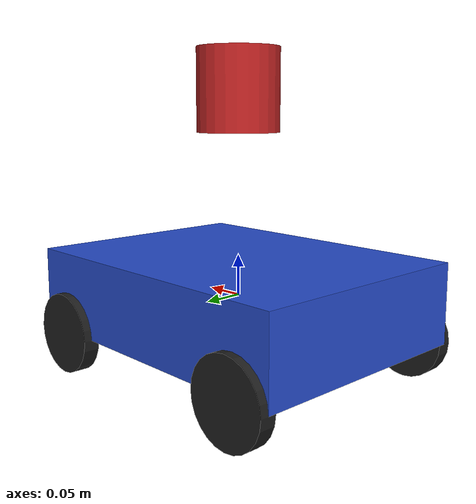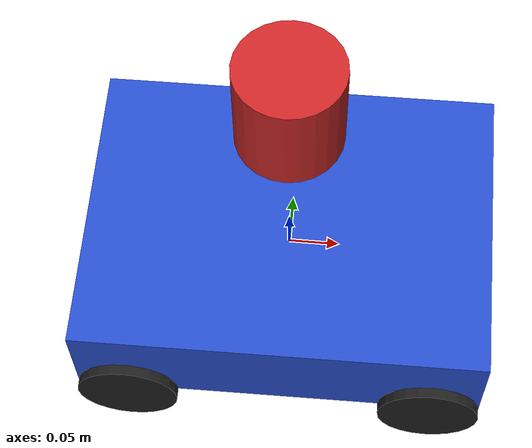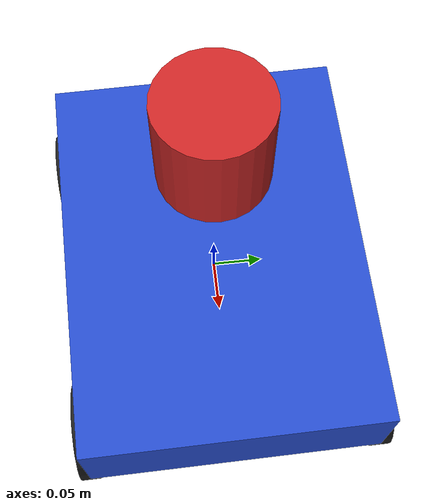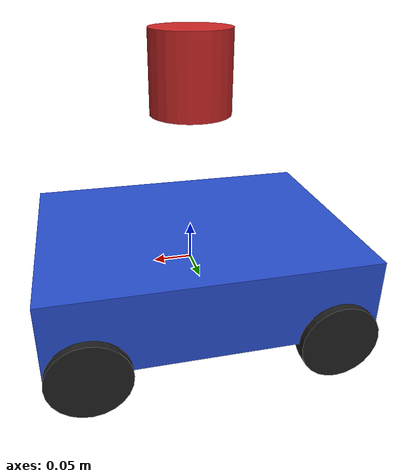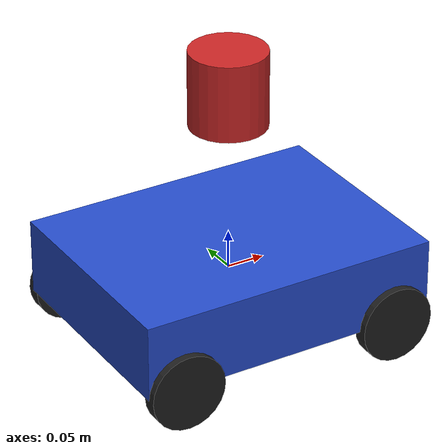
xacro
<?xml version="1.0"?>
<robot name="my_robot" xmlns:xacro="http://ros.org/wiki/xacro">

  <!-- Base link -->
  <link name="base_link">
    <visual>
      <geometry>
        <box size="0.4 0.3 0.1"/> <!-- جسم الروبوت -->
      </geometry>
      <origin xyz="0 0 0" rpy="0 0 0"/>
      <material name="blue"/>
    </visual>
    <collision>
      <geometry>
        <box size="0.4 0.3 0.1"/>
      </geometry>
    </collision>
    <inertial>
      <mass value="5"/>
      <inertia ixx="0.1" iyy="0.1" izz="0.1" ixy="0" ixz="0" iyz="0"/>
    </inertial>
  </link>

  <!-- Four Wheels -->
  <xacro:macro name="wheel" params="name x y">
    <link name="${name}_wheel">
      <visual>
        <geometry>
          <cylinder radius="0.05" length="0.02"/>
        </geometry>
        <origin xyz="0 0 0" rpy="1.57 0 0"/>
        <material name="black"/>
      </visual>
      <collision>
        <geometry>
          <cylinder radius="0.05" length="0.02"/>
        </geometry>
      </collision>
      <inertial>
        <mass value="1"/>
        <inertia ixx="0.01" iyy="0.01" izz="0.01" ixy="0" ixz="0" iyz="0"/>
      </inertial>
    </link>

    <joint name="${name}_joint" type="continuous">
      <parent link="base_link"/>
      <child link="${name}_wheel"/>
      <origin xyz="${x} ${y} -0.05" rpy="0 0 0"/>
      <axis xyz="0 1 0"/>
    </joint>
  </xacro:macro>

  <!-- Instantiate wheels -->
  <xacro:wheel name="front_left"  x="0.15" y="0.15"/>
  <xacro:wheel name="front_right" x="0.15" y="-0.15"/>
  <xacro:wheel name="rear_left"   x="-0.15" y="0.15"/>
  <xacro:wheel name="rear_right"  x="-0.15" y="-0.15"/>

  <!-- LiDAR -->
  <link name="lidar">
    <visual>
      <geometry>
        <cylinder radius="0.05" length="0.1"/>
      </geometry>
      <origin xyz="0 0 0.1" rpy="0 0 0"/>
      <material name="red"/>
    </visual>
  </link>

  <joint name="lidar_joint" type="fixed">
    <parent link="base_link"/>
    <child link="lidar"/>
    <origin xyz="0 0 0.15" rpy="0 0 0"/>
  </joint>

</robot>
